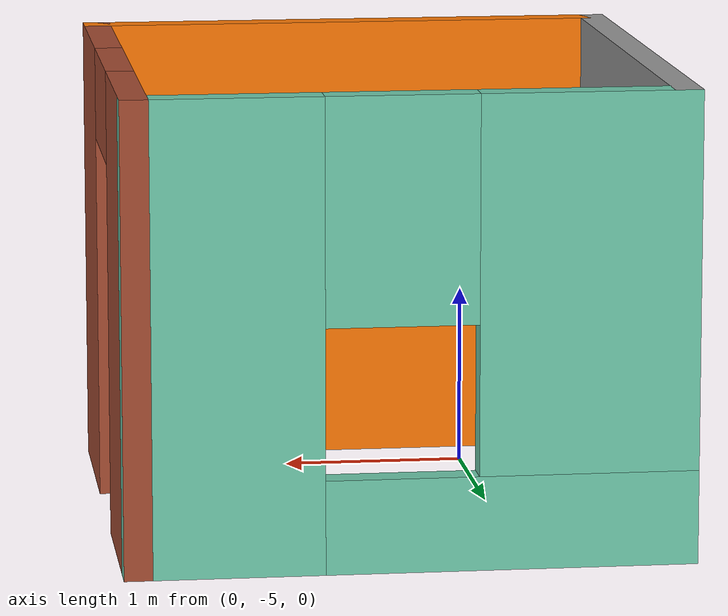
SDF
<?xml version='1.0'?>
<sdf version='1.6'>
  <model name='building'>
    <pose frame=''>0.605 -3.975 0 0 -0 0</pose>
    <link name='Wall_0'>
      <pose frame=''>0 1.425 0 0 -0 3.14159</pose>
      <visual name='Wall_0_Visual_0'>
        <pose frame=''>-0.9775 0 1.25 0 -0 0</pose>
        <geometry>
          <box>
            <size>1.045 0.15 2.5</size>
          </box>
        </geometry>
        <material>
          <script>
            <uri>file://media/materials/scripts/gazebo.material</uri>
            <name>Gazebo/Grey</name>
          </script>
          <ambient>0.435294 0.796078 0.67451 1</ambient>
        </material>
        <meta>
          <layer>0</layer>
        </meta>
      </visual>
      <collision name='Wall_0_Collision_0'>
        <geometry>
          <box>
            <size>1.045 0.15 2.5</size>
          </box>
        </geometry>
        <pose frame=''>-0.9775 0 1.25 0 -0 0</pose>
      </collision>
      <visual name='Wall_0_Visual_1'>
        <pose frame=''>0.5225 0 0.25 0 -0 0</pose>
        <geometry>
          <box>
            <size>1.955 0.15 0.5</size>
          </box>
        </geometry>
        <material>
          <script>
            <uri>file://media/materials/scripts/gazebo.material</uri>
            <name>Gazebo/Grey</name>
          </script>
          <ambient>0.435294 0.796078 0.67451 1</ambient>
        </material>
        <meta>
          <layer>0</layer>
        </meta>
      </visual>
      <collision name='Wall_0_Collision_1'>
        <geometry>
          <box>
            <size>1.955 0.15 0.5</size>
          </box>
        </geometry>
        <pose frame=''>0.5225 0 0.25 0 -0 0</pose>
      </collision>
      <visual name='Wall_0_Visual_2'>
        <pose frame=''>0.9225 0 1.5 0 -0 0</pose>
        <geometry>
          <box>
            <size>1.155 0.15 2</size>
          </box>
        </geometry>
        <material>
          <script>
            <uri>file://media/materials/scripts/gazebo.material</uri>
            <name>Gazebo/Grey</name>
          </script>
          <ambient>0.435294 0.796078 0.67451 1</ambient>
        </material>
        <meta>
          <layer>0</layer>
        </meta>
      </visual>
      <collision name='Wall_0_Collision_2'>
        <geometry>
          <box>
            <size>1.155 0.15 2</size>
          </box>
        </geometry>
        <pose frame=''>0.9225 0 1.5 0 -0 0</pose>
      </collision>
      <visual name='Wall_0_Visual_3'>
        <pose frame=''>-0.055 0 1.9 0 -0 0</pose>
        <geometry>
          <box>
            <size>0.8 0.15 1.2</size>
          </box>
        </geometry>
        <material>
          <script>
            <uri>file://media/materials/scripts/gazebo.material</uri>
            <name>Gazebo/Grey</name>
          </script>
          <ambient>0.435294 0.796078 0.67451 1</ambient>
        </material>
        <meta>
          <layer>0</layer>
        </meta>
      </visual>
      <collision name='Wall_0_Collision_3'>
        <geometry>
          <box>
            <size>0.8 0.15 1.2</size>
          </box>
        </geometry>
        <pose frame=''>-0.055 0 1.9 0 -0 0</pose>
      </collision>
    </link>
    <link name='Wall_1'>
      <collision name='Wall_1_Collision'>
        <geometry>
          <box>
            <size>3 0.15 2.5</size>
          </box>
        </geometry>
        <pose frame=''>0 0 1.25 0 -0 0</pose>
      </collision>
      <visual name='Wall_1_Visual'>
        <pose frame=''>0 0 1.25 0 -0 0</pose>
        <geometry>
          <box>
            <size>3 0.15 2.5</size>
          </box>
        </geometry>
        <material>
          <script>
            <uri>file://media/materials/scripts/gazebo.material</uri>
            <name>Gazebo/Grey</name>
          </script>
          <ambient>1 1 1 1</ambient>
        </material>
        <meta>
          <layer>0</layer>
        </meta>
      </visual>
      <pose frame=''>-1.425 0 0 0 0 -1.5708</pose>
    </link>
    <link name='Wall_2'>
      <collision name='Wall_2_Collision'>
        <geometry>
          <box>
            <size>3 0.15 2.5</size>
          </box>
        </geometry>
        <pose frame=''>0 0 1.25 0 -0 0</pose>
      </collision>
      <visual name='Wall_2_Visual'>
        <pose frame=''>0 0 1.25 0 -0 0</pose>
        <geometry>
          <box>
            <size>3 0.15 2.5</size>
          </box>
        </geometry>
        <material>
          <script>
            <uri>file://media/materials/scripts/gazebo.material</uri>
            <name>Gazebo/Grey</name>
          </script>
          <ambient>0.996078 0.47451 0.0196078 1</ambient>
        </material>
        <meta>
          <layer>0</layer>
        </meta>
      </visual>
      <pose frame=''>0 -1.425 0 0 -0 0</pose>
    </link>
    <link name='Wall_3'>
      <pose frame=''>1.425 0 0 0 -0 1.5708</pose>
      <visual name='Wall_3_Visual_0'>
        <pose frame=''>-0.9675 0 1.25 0 -0 0</pose>
        <geometry>
          <box>
            <size>1.065 0.15 2.5</size>
          </box>
        </geometry>
        <material>
          <script>
            <uri>file://media/materials/scripts/gazebo.material</uri>
            <name>Gazebo/Bricks</name>
          </script>
          <ambient>1 1 1 1</ambient>
        </material>
        <meta>
          <layer>0</layer>
        </meta>
      </visual>
      <collision name='Wall_3_Collision_0'>
        <geometry>
          <box>
            <size>1.065 0.15 2.5</size>
          </box>
        </geometry>
        <pose frame=''>-0.9675 0 1.25 0 -0 0</pose>
      </collision>
      <visual name='Wall_3_Visual_1'>
        <pose frame=''>0.9825 0 1.25 0 -0 0</pose>
        <geometry>
          <box>
            <size>1.035 0.15 2.5</size>
          </box>
        </geometry>
        <material>
          <script>
            <uri>file://media/materials/scripts/gazebo.material</uri>
            <name>Gazebo/Bricks</name>
          </script>
          <ambient>1 1 1 1</ambient>
        </material>
        <meta>
          <layer>0</layer>
        </meta>
      </visual>
      <collision name='Wall_3_Collision_1'>
        <geometry>
          <box>
            <size>1.035 0.15 2.5</size>
          </box>
        </geometry>
        <pose frame=''>0.9825 0 1.25 0 -0 0</pose>
      </collision>
      <visual name='Wall_3_Visual_2'>
        <pose frame=''>0.015 0 2.25 0 -0 0</pose>
        <geometry>
          <box>
            <size>0.9 0.15 0.5</size>
          </box>
        </geometry>
        <material>
          <script>
            <uri>file://media/materials/scripts/gazebo.material</uri>
            <name>Gazebo/Bricks</name>
          </script>
          <ambient>1 1 1 1</ambient>
        </material>
        <meta>
          <layer>0</layer>
        </meta>
      </visual>
      <collision name='Wall_3_Collision_2'>
        <geometry>
          <box>
            <size>0.9 0.15 0.5</size>
          </box>
        </geometry>
        <pose frame=''>0.015 0 2.25 0 -0 0</pose>
      </collision>
    </link>
    <static>1</static>
  </model>
</sdf>
